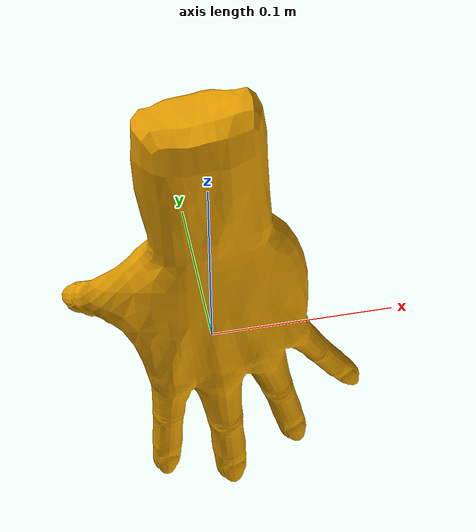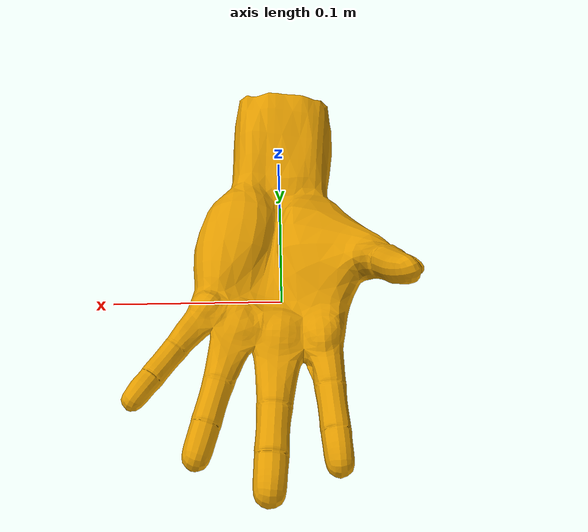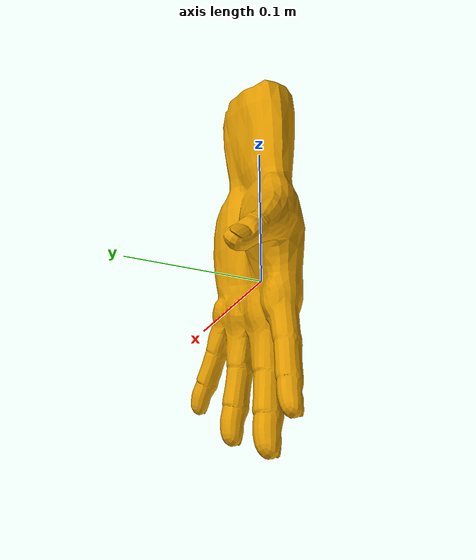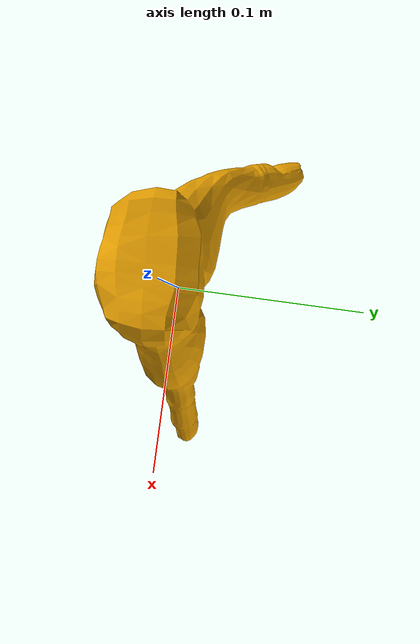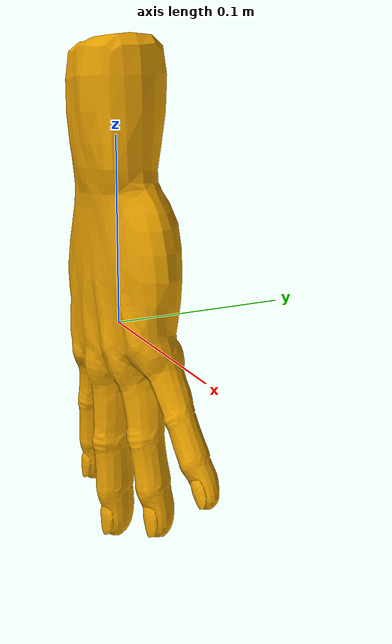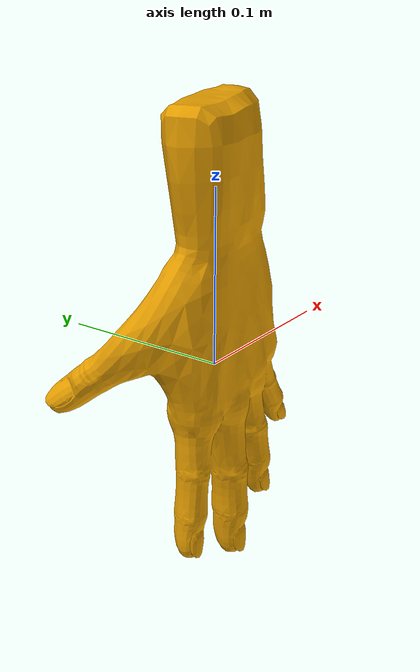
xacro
<?xml version="1.0"?>

<robot name="hand_left">

    <gazebo reference="link_base">
        <turnGravityOff>true</turnGravityOff>
    </gazebo>
    <gazebo>
        <plugin name="gazebo_ros_template" filename="libgazebo_ros_template.so"/>
    </gazebo>

    <link name="link_base">
        <visual>
            <origin xyz="0.0 0.0 0.0"/>
            <geometry>
                <mesh filename="package://wai_oa_gazebo/resources/reps/hand_left/hand_left.dae"/>
            </geometry>
        </visual>
    </link>

</robot>
